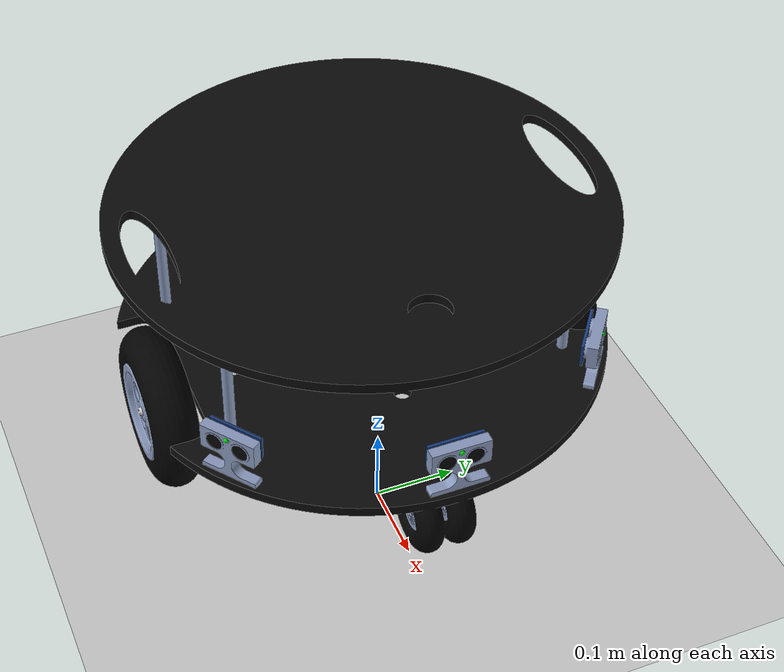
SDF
<?xml version="1.0" ?>
<sdf version="1.8">
  <world name="simple">

    <plugin
      filename="libignition-gazebo-physics-system.so"
      name="ignition::gazebo::systems::Physics">
    </plugin>
    <plugin
      filename="libignition-gazebo-sensors-system.so"
      name="ignition::gazebo::systems::Sensors">
      <render_engine>ogre2</render_engine>
    </plugin>
    <plugin
      filename="libignition-gazebo-scene-broadcaster-system.so"
      name="ignition::gazebo::systems::SceneBroadcaster">
    </plugin>

    <light name="sun" type="directional">
      <cast_shadows>true</cast_shadows>
      <pose>0 0 10 0 0 0</pose>
      <diffuse>0.8 0.8 0.8 1</diffuse>
      <specular>0.2 0.2 0.2 1</specular>
      <attenuation>
        <range>1000</range>
        <constant>0.9</constant>
        <linear>0.01</linear>
        <quadratic>0.001</quadratic>
      </attenuation>
      <direction>-0.5 0.1 -0.9</direction>
    </light>

    <model name="ground_plane">
      <static>true</static>
      <link name="link">
        <collision name="collision">
          <geometry>
            <plane>
              <normal>0 0 1</normal>
              <size>100 100</size>
            </plane>
          </geometry>
        </collision>
        <visual name="visual">
          <geometry>
            <plane>
              <normal>0 0 1</normal>
              <size>100 100</size>
            </plane>
          </geometry>
          <material>
            <ambient>0.8 0.8 0.8 1</ambient>
            <diffuse>0.8 0.8 0.8 1</diffuse>
            <specular>0.8 0.8 0.8 1</specular>
          </material>
        </visual>
      </link>
    </model>

    <model name="arlo_xolobot">
      <self_collide>false</self_collide>
      <pose>0 0 0.1 0 0 0</pose>
      <include merge="true">
        <uri>package://xolobot_description/models/arlodrive</uri>
      </include>

    </model>

  </world>
</sdf>

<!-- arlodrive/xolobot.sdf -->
<sdf version='1.6'>
  <model name='arlo_xolobot'>

    <!--   DIEGO The base of the arlo robot base: lower and upper decks, and caster wheels (fixed)   -->
    <link name='link_base'>
      <inertial>
        <mass>10</mass>
        <inertia>
          <ixx>0.191043</ixx>
          <ixy>0</ixy>
          <ixz>0</ixz>
          <iyy>0.191043</iyy>
          <iyz>0</iyz>
          <izz>0.331905</izz>
        </inertia>
        <pose frame=''>0 0 0 0 0 0</pose>
      </inertial>
      <pose frame=''>-0.055242 0 0.153337 0 0 0</pose>
      <gravity>1</gravity>
      <self_collide>0</self_collide>
      <kinematic>0</kinematic>
      <enable_wind>0</enable_wind>
      <visual name='visual'>
        <pose frame=''>0 0 0 0 -0 0</pose>
        <geometry>
          <mesh>
            <uri>model://meshes/arlo_base_altura_ok.dae</uri>
            <scale>1 1 1</scale>
          </mesh>
        </geometry>
        <transparency>0</transparency>
        <cast_shadows>1</cast_shadows>
      </visual>
      <collision name='collision_base'>
        <laser_retro>0</laser_retro>
        <max_contacts>10</max_contacts>
        <pose frame=''>0 0 0.070880 0 -0 0</pose>
        <geometry>
          <cylinder>
            <radius>0.288056</radius>
            <length>0.194</length>
          </cylinder>
        </geometry>
        <surface>
          <friction>
            <ode>
              <mu>1</mu>
              <mu2>1</mu2>
              <fdir1>0 0 0</fdir1>
              <slip1>0</slip1>
              <slip2>0</slip2>
            </ode>
            <torsional>
              <coefficient>1</coefficient>
              <patch_radius>0</patch_radius>
              <surface_radius>0</surface_radius>
              <use_patch_radius>1</use_patch_radius>
              <ode>
                <slip>0</slip>
              </ode>
            </torsional>
          </friction>
          <bounce>
            <restitution_coefficient>0</restitution_coefficient>
            <threshold>1e+06</threshold>
          </bounce>
          <contact>
            <collide_without_contact>0</collide_without_contact>
            <collide_without_contact_bitmask>1</collide_without_contact_bitmask>
            <collide_bitmask>1</collide_bitmask>
            <ode>
              <soft_cfm>0</soft_cfm>
              <soft_erp>0.2</soft_erp>
              <kp>1e+13</kp>
              <kd>1</kd>
              <max_vel>0.01</max_vel>
              <min_depth>0</min_depth>
            </ode>
            <bullet>
              <split_impulse>1</split_impulse>
              <split_impulse_penetration_threshold>-0.01</split_impulse_penetration_threshold>
              <soft_cfm>0</soft_cfm>
              <soft_erp>0.2</soft_erp>
              <kp>1e+13</kp>
              <kd>1</kd>
            </bullet>
          </contact>
        </surface>
      </collision>
    </link>

    <!--    The caster wheel: an invisible sphere to simulate de real caster wheel. -->
    <link name='link_caster'>
      <inertial>
        <mass>0.8</mass>
        <inertia>
          <ixx>0.00043452</ixx>
          <ixy>0</ixy>
          <ixz>0</ixz>
          <iyy>0.00043452</iyy>
          <iyz>0</iyz>
          <izz>0.00043452</izz>
        </inertia>
        <pose frame=''>0 0 0 0 -0 0</pose>
      </inertial>
      <pose frame=''>0.167839 0 0.05 0 -0 0</pose>
      <gravity>1</gravity>
      <self_collide>0</self_collide>
      <kinematic>0</kinematic>
      <enable_wind>0</enable_wind>
      <visual name='visual'>
        <pose frame=''>0 0 0 0 0 0</pose>
        <geometry>
          <sphere>
            <radius>0.0466108</radius>
          </sphere>
        </geometry>
        <!--        This makes the sphere invisible -->
        <transparency>1</transparency>
        <cast_shadows>1</cast_shadows>
      </visual>
      <collision name='collision'>
        <laser_retro>0</laser_retro>
        <max_contacts>10</max_contacts>
        <pose frame=''>0 0 0 0 -0 0</pose>
        <geometry>
          <sphere>
            <radius>0.046611</radius>
          </sphere>
        </geometry>
        <surface>
          <friction>
            <ode>
              <mu>1</mu>
              <mu2>1</mu2>
              <fdir1>0 0 0</fdir1>
              <slip1>0</slip1>
              <slip2>0</slip2>
            </ode>
            <torsional>
              <coefficient>1</coefficient>
              <patch_radius>0</patch_radius>
              <surface_radius>0</surface_radius>
              <use_patch_radius>1</use_patch_radius>
              <ode>
                <slip>0</slip>
              </ode>
            </torsional>
          </friction>
          <bounce>
            <restitution_coefficient>0</restitution_coefficient>
            <threshold>1e+06</threshold>
          </bounce>
          <contact>
            <collide_without_contact>0</collide_without_contact>
            <collide_without_contact_bitmask>1</collide_without_contact_bitmask>
            <collide_bitmask>1</collide_bitmask>
            <ode>
              <soft_cfm>0</soft_cfm>
              <soft_erp>0.2</soft_erp>
              <kp>1e+13</kp>
              <kd>1</kd>
              <max_vel>0.01</max_vel>
              <min_depth>0</min_depth>
            </ode>
            <bullet>
              <split_impulse>1</split_impulse>
              <split_impulse_penetration_threshold>-0.01</split_impulse_penetration_threshold>
              <soft_cfm>0</soft_cfm>
              <soft_erp>0.2</soft_erp>
              <kp>1e+13</kp>
              <kd>1</kd>
            </bullet>
          </contact>
        </surface>
      </collision>
    </link>

    <!--    The back caster wheel: an invisible sphere to simulate de real caster wheel. -->
    <link name='link_caster_back'>
      <inertial>
        <mass>0.8</mass>
        <inertia>
          <ixx>0.00043452</ixx>
          <ixy>0</ixy>
          <ixz>0</ixz>
          <iyy>0.00043452</iyy>
          <iyz>0</iyz>
          <izz>0.00043452</izz>
        </inertia>
        <pose frame=''>0 0 0 0 -0 0</pose>
      </inertial>
      <pose frame=''>-0.278 0 0.05 0 -0 0</pose>
      <gravity>1</gravity>
      <self_collide>0</self_collide>
      <kinematic>0</kinematic>
      <enable_wind>0</enable_wind>
      <visual name='visual'>
        <pose frame=''>0 0 0 0 0 0</pose>
        <geometry>
          <sphere>
            <radius>0.0466108</radius>
          </sphere>
        </geometry>
        <!--        This makes the sphere invisible -->
        <transparency>1</transparency>
        <cast_shadows>1</cast_shadows>
      </visual>
      <collision name='collision'>
        <laser_retro>0</laser_retro>
        <max_contacts>10</max_contacts>
        <pose frame=''>0 0 0 0 -0 0</pose>
        <geometry>
          <sphere>
            <radius>0.046611</radius>
          </sphere>
        </geometry>
        <surface>
          <friction>
            <ode>
              <mu>1</mu>
              <mu2>1</mu2>
              <fdir1>0 0 0</fdir1>
              <slip1>0</slip1>
              <slip2>0</slip2>
            </ode>
            <torsional>
              <coefficient>1</coefficient>
              <patch_radius>0</patch_radius>
              <surface_radius>0</surface_radius>
              <use_patch_radius>1</use_patch_radius>
              <ode>
                <slip>0</slip>
              </ode>
            </torsional>
          </friction>
          <bounce>
            <restitution_coefficient>0</restitution_coefficient>
            <threshold>1e+06</threshold>
          </bounce>
          <contact>
            <collide_without_contact>0</collide_without_contact>
            <collide_without_contact_bitmask>1</collide_without_contact_bitmask>
            <collide_bitmask>1</collide_bitmask>
            <ode>
              <soft_cfm>0</soft_cfm>
              <soft_erp>0.2</soft_erp>
              <kp>1e+13</kp>
              <kd>1</kd>
              <max_vel>0.01</max_vel>
              <min_depth>0</min_depth>
            </ode>
            <bullet>
              <split_impulse>1</split_impulse>
              <split_impulse_penetration_threshold>-0.01</split_impulse_penetration_threshold>
              <soft_cfm>0</soft_cfm>
              <soft_erp>0.2</soft_erp>
              <kp>1e+13</kp>
              <kd>1</kd>
            </bullet>
          </contact>
        </surface>
      </collision>
    </link>

    <!--    The left wheel of the base-->
    <link name='link_wheel_left'>
      <inertial>
        <mass>1</mass>
        <inertia>
          <ixx>0.166667</ixx>
          <ixy>0</ixy>
          <ixz>0</ixz>
          <iyy>0.166667</iyy>
          <iyz>0</iyz>
          <izz>0.166667</izz>
        </inertia>
        <pose frame=''>0 0 0 0 -0 0</pose>
      </inertial>
      <pose frame=''>-0.053 0.251767 0.0978 0 -0 0</pose>
      <gravity>1</gravity>
      <self_collide>0</self_collide>
      <kinematic>0</kinematic>
      <enable_wind>0</enable_wind>
      <visual name='visual'>
        <pose frame=''>0 0 0 0 -0 0</pose>
        <geometry>
          <mesh>
            <uri>model://meshes/arlo_wheel_mejorado.dae</uri>
            <scale>1 1 1</scale>
          </mesh>
        </geometry>
        <transparency>0</transparency>
        <cast_shadows>1</cast_shadows>
      </visual>
      <collision name='collision'>
        <laser_retro>0</laser_retro>
        <max_contacts>10</max_contacts>
        <pose frame=''>0 0 0 0 -0 0</pose>
        <geometry>
          <mesh>
            <uri>model://meshes/arlo_wheel_mejorado.dae</uri>
            <scale>1 1 1</scale>
          </mesh>
        </geometry>
        <surface>
          <friction>
            <ode>
              <mu>1</mu>
              <mu2>1</mu2>
              <fdir1>0 0 0</fdir1>
              <slip1>0</slip1>
              <slip2>0</slip2>
            </ode>
            <torsional>
              <coefficient>1</coefficient>
              <patch_radius>0</patch_radius>
              <surface_radius>0</surface_radius>
              <use_patch_radius>1</use_patch_radius>
              <ode>
                <slip>0</slip>
              </ode>
            </torsional>
          </friction>
          <bounce>
            <restitution_coefficient>0</restitution_coefficient>
            <threshold>1e+06</threshold>
          </bounce>
          <contact>
            <collide_without_contact>0</collide_without_contact>
            <collide_without_contact_bitmask>1</collide_without_contact_bitmask>
            <collide_bitmask>1</collide_bitmask>
            <ode>
              <soft_cfm>0</soft_cfm>
              <soft_erp>0.2</soft_erp>
              <kp>1e+13</kp>
              <kd>1</kd>
              <max_vel>0.01</max_vel>
              <min_depth>0</min_depth>
            </ode>
            <bullet>
              <split_impulse>1</split_impulse>
              <split_impulse_penetration_threshold>-0.01</split_impulse_penetration_threshold>
              <soft_cfm>0</soft_cfm>
              <soft_erp>0.2</soft_erp>
              <kp>1e+13</kp>
              <kd>1</kd>
            </bullet>
          </contact>
        </surface>
      </collision>
    </link>

    <!--    The right wheel of the base -->
    <link name='link_wheel_right'>
      <inertial>
        <mass>1</mass>
        <inertia>
          <ixx>0.166667</ixx>
          <ixy>0</ixy>
          <ixz>0</ixz>
          <iyy>0.166667</iyy>
          <iyz>0</iyz>
          <izz>0.166667</izz>
        </inertia>
        <pose frame=''>0 0 0 0 -0 0</pose>
      </inertial>
      <pose frame=''>-0.053 -0.251767 0.0978 0 0 -3.13728</pose>
      <gravity>1</gravity>
      <self_collide>0</self_collide>
      <kinematic>0</kinematic>
      <enable_wind>0</enable_wind>
      <visual name='visual'>
        <pose frame=''>0 0 0 0 -0 0</pose>
        <geometry>
          <mesh>
            <uri>model://meshes/arlo_wheel_mejorado.dae</uri>
            <scale>1 1 1</scale>
          </mesh>
        </geometry>
        <transparency>0</transparency>
        <cast_shadows>1</cast_shadows>
        <material>
          <shader type='pixel' />
          <emissive>0 0 0 1</emissive>
        </material>
      </visual>
      <collision name='collision'>
        <laser_retro>0</laser_retro>
        <max_contacts>10</max_contacts>
        <pose frame=''>0 0 0 0 -0 0</pose>
        <geometry>
          <mesh>
            <uri>model://meshes/arlo_wheel_mejorado.dae</uri>
            <scale>1 1 1</scale>
          </mesh>
        </geometry>
        <surface>
          <friction>
            <ode>
              <mu>1</mu>
              <mu2>1</mu2>
              <fdir1>0 0 0</fdir1>
              <slip1>0</slip1>
              <slip2>0</slip2>
            </ode>
            <torsional>
              <coefficient>1</coefficient>
              <patch_radius>0</patch_radius>
              <surface_radius>0</surface_radius>
              <use_patch_radius>1</use_patch_radius>
              <ode>
                <slip>0</slip>
              </ode>
            </torsional>
          </friction>
          <bounce>
            <restitution_coefficient>0</restitution_coefficient>
            <threshold>1e+06</threshold>
          </bounce>
          <contact>
            <collide_without_contact>0</collide_without_contact>
            <collide_without_contact_bitmask>1</collide_without_contact_bitmask>
            <collide_bitmask>1</collide_bitmask>
            <ode>
              <soft_cfm>0</soft_cfm>
              <soft_erp>0.2</soft_erp>
              <kp>1e+13</kp>
              <kd>1</kd>
              <max_vel>0.01</max_vel>
              <min_depth>0</min_depth>
            </ode>
            <bullet>
              <split_impulse>1</split_impulse>
              <split_impulse_penetration_threshold>-0.01</split_impulse_penetration_threshold>
              <soft_cfm>0</soft_cfm>
              <soft_erp>0.2</soft_erp>
              <kp>1e+13</kp>
              <kd>1</kd>
            </bullet>
          </contact>
        </surface>
      </collision>
    </link>

    <!--    The three PING))) ultrasonic distance sensors (these are fixed with with a JOINT. -->
    <link name='link_sensor_center'>
      <gravity>0</gravity>
      <inertial>
        <mass>0.01</mass>
      </inertial>
      <pose frame=''>0.218715 0 0.17346 0 0 0</pose>
      <sensor name='head_hokuyo_sensor' type='ray'>
        <pose frame=''>0 0 0.0125 3.14159 0 0</pose>
        <visualize>1</visualize>
        <update_rate>30</update_rate>
        <ray>
          <noise>
            <type>gaussian</type>
            <mean>0</mean>
            <stddev>0.001</stddev>
          </noise>
          <scan>
            <horizontal>
              <samples>16</samples>
              <resolution>1</resolution>
              <min_angle>-0.4</min_angle>
              <max_angle>0.4</max_angle>
            </horizontal>
            <vertical>
              <samples>1</samples>
              <min_angle>0</min_angle>
              <max_angle>0</max_angle>
            </vertical>
          </scan>
          <range>
            <min>0.05</min>
            <max>3</max>
            <resolution>0.02</resolution>
          </range>
        </ray>
        <plugin name="gazebo_ros_head_hokuyo_controller" filename="libgazebo_ros_ray_sensor.so">
          <ros>
          <namespace>/arlo/laser/</namespace>
          <remapping>~/out:=scan_center</remapping>
          </ros>
          <output_type>sensor_msgs/LaserScan</output_type>
        </plugin>
      </sensor>
      <visual name='visual'>
        <pose frame=''>0 0 0 0 -0 0</pose>
        <geometry>
          <mesh>
            <uri>model://meshes/arlo_sensor.dae</uri>
            <scale>1 1 1</scale>
          </mesh>
        </geometry>
      </visual>
      <collision name='collision'>
        <pose frame=''>0 0 0 0 0 0</pose>
        <geometry>
          <mesh>
            <uri>model://meshes/arlo_sensor.dae</uri>
            <scale>1 1 1</scale>
          </mesh>
        </geometry>
      </collision>
    </link>

    <link name='link_sensor_back'>
      <gravity>0</gravity>
      <inertial>
        <mass>0.01</mass>
      </inertial>
      <pose frame=''>-0.325 0 0.17346 0 0 3.14159</pose>
      <sensor name='head_hokuyo_sensor' type='ray'>
        <pose frame=''>0 0 0.0125 3.14159 0 0</pose>
        <visualize>0</visualize>
        <update_rate>30</update_rate>
        <ray>
          <noise>
            <type>gaussian</type>
            <mean>0</mean>
            <stddev>0.001</stddev>
          </noise>
          <scan>
            <horizontal>
              <samples>16</samples>
              <resolution>1</resolution>
              <min_angle>-0.4</min_angle>
              <max_angle>0.4</max_angle>
            </horizontal>
            <vertical>
              <samples>1</samples>
              <min_angle>0</min_angle>
              <max_angle>0</max_angle>
            </vertical>
          </scan>
          <range>
            <min>0.05</min>
            <max>3</max>
            <resolution>0.02</resolution>
          </range>
        </ray>
        <plugin name="gazebo_ros_head_hokuyo_controller" filename="libgazebo_ros_ray_sensor.so">
          <ros>
          <namespace>/arlo/laser/</namespace>
          <remapping>~/out:=scan_back</remapping>
          </ros>
          <output_type>sensor_msgs/LaserScan</output_type>
        </plugin>
      </sensor>
      <visual name='visual'>
        <pose frame=''>0 0 0 0 -0 0</pose>
        <geometry>
          <mesh>
            <uri>model://meshes/arlo_sensor.dae</uri>
            <scale>1 1 1</scale>
          </mesh>
        </geometry>
      </visual>
      <collision name='collision'>
        <pose frame=''>0 0 0 0 0 0</pose>
        <geometry>
          <mesh>
            <uri>model://meshes/arlo_sensor.dae</uri>
            <scale>1 1 1</scale>
          </mesh>
        </geometry>
      </collision>
    </link>

    <link name='link_sensor_right'>
      <gravity>0</gravity>
      <inertial>
        <mass>0.01</mass>
      </inertial>
      <pose frame=''>0.113899 -0.214883 0.17346 0 0 -0.927292</pose>
      <sensor name='head_hokuyo_sensor' type='ray'>
        <pose frame=''>0 0 0.0125 3.14159 0 0</pose>
        <visualize>1</visualize>
        <update_rate>30</update_rate>
        <ray>
          <noise>
            <type>gaussian</type>
            <mean>0</mean>
            <stddev>0.001</stddev>
          </noise>
          <scan>
            <horizontal>
              <samples>16</samples>
              <resolution>1</resolution>
              <min_angle>-0.4</min_angle>
              <max_angle>0.4</max_angle>
            </horizontal>
            <vertical>
              <samples>1</samples>
              <min_angle>0</min_angle>
              <max_angle>0</max_angle>
            </vertical>
          </scan>
          <range>
            <min>0.05</min>
            <max>3</max>
            <resolution>0.02</resolution>
          </range>
        </ray>
        <plugin name="gazebo_ros_head_hokuyo_controller" filename="libgazebo_ros_ray_sensor.so">
          <ros>
          <namespace>/arlo/laser/</namespace>
          <remapping>~/out:=scan_right</remapping>
          </ros>
          <output_type>sensor_msgs/LaserScan</output_type>
        </plugin>
      </sensor>
      <visual name='visual'>
        <pose frame=''>0 0 0 0 0 0</pose>
        <geometry>
          <mesh>
            <uri>model://meshes/arlo_sensor.dae</uri>
            <scale>1 1 1</scale>
          </mesh>
        </geometry>
      </visual>
      <collision name='collision'>
        <pose frame=''>0 0 0 0 0 0</pose>
        <geometry>
          <mesh>
            <uri>model://meshes/arlo_sensor.dae</uri>
            <scale>1 1 1</scale>
          </mesh>
        </geometry>
      </collision>
    </link>

    <link name='link_sensor_left'>
      <gravity>0</gravity>
      <inertial>
        <mass>0.01</mass>
      </inertial>
      <pose frame=''>0.113899 0.214883 0.17346 0 0 0.927292</pose>
      <sensor name='head_hokuyo_sensor' type='ray'>
        <pose frame=''>0 0 0.0125 3.14159 0 0</pose>
        <visualize>1</visualize>
        <update_rate>30</update_rate>
        <ray>
          <noise>
            <type>gaussian</type>
            <mean>0</mean>
            <stddev>0.001</stddev>
          </noise>
          <scan>
            <horizontal>
              <samples>16</samples>
              <resolution>1</resolution>
              <min_angle>-0.4</min_angle>
              <max_angle>0.4</max_angle>
            </horizontal>
            <vertical>
              <samples>1</samples>
              <min_angle>0</min_angle>
              <max_angle>0</max_angle>
            </vertical>
          </scan>
          <range>
            <min>0.05</min>
            <max>3</max>
            <resolution>0.02</resolution>
          </range>
        </ray>
        <plugin name="gazebo_ros_head_hokuyo_controller" filename="libgazebo_ros_ray_sensor.so">
          <ros>
          <namespace>/arlo/laser/</namespace>
          <remapping>~/out:=scan_left</remapping>
          </ros>
          <output_type>sensor_msgs/LaserScan</output_type>
        </plugin>
      </sensor>
      <visual name='visual'>
        <pose frame=''>0 0 0 0 -0 0</pose>
        <geometry>
          <mesh>
            <uri>model://meshes/arlo_sensor.dae</uri>
            <scale>1 1 1</scale>
          </mesh>
        </geometry>
      </visual>
      <collision name='collision'>
        <pose frame=''>0 0 0 0 -0 0</pose>
        <geometry>
          <mesh>
            <uri>model://meshes/arlo_sensor.dae</uri>
            <scale>1 1 1</scale>
          </mesh>
        </geometry>
      </collision>
    </link>

    <!--Joints for keeping fixed the three sonar sensors.    -->
    <joint name='link_base_JOINT_sensor_center' type='fixed'>
      <parent>link_base</parent>
      <child>link_sensor_center</child>
      <pose frame=''>0 0 0 0 -0 0</pose>
      <physics>
        <ode>
          <limit>
            <cfm>0</cfm>
            <erp>0.2</erp>
          </limit>
          <suspension>
            <cfm>0</cfm>
            <erp>0.2</erp>
          </suspension>
        </ode>
      </physics>
    </joint>
    <joint name='link_base_JOINT_sensor_back' type='fixed'>
      <parent>link_base</parent>
      <child>link_sensor_back</child>
      <pose frame=''>0 0 0 0 -0 0</pose>
      <physics>
        <ode>
          <limit>
            <cfm>0</cfm>
            <erp>0.2</erp>
          </limit>
          <suspension>
            <cfm>0</cfm>
            <erp>0.2</erp>
          </suspension>
        </ode>
      </physics>
    </joint>
    <joint name='link_base_JOINT_sensor_right' type='fixed'>
      <parent>link_base</parent>
      <child>link_sensor_right</child>
      <pose frame=''>0 0 0 0 -0 0</pose>
      <physics>
        <ode>
          <limit>
            <cfm>0</cfm>
            <erp>0.2</erp>
          </limit>
          <suspension>
            <cfm>0</cfm>
            <erp>0.2</erp>
          </suspension>
        </ode>
      </physics>
    </joint>
    <joint name='link_base_JOINT_sensor_left' type='fixed'>
      <parent>link_base</parent>
      <child>link_sensor_left</child>
      <pose frame=''>0 0 0 0 -0 0</pose>
      <physics>
        <ode>
          <limit>
            <cfm>0</cfm>
            <erp>0.2</erp>
          </limit>
          <suspension>
            <cfm>0</cfm>
            <erp>0.2</erp>
          </suspension>
        </ode>
      </physics>
    </joint>
    <joint name='link_base_JOINT_caster' type='ball'>
      <parent>link_base</parent>
      <child>link_caster</child>
      <pose frame=''>0 0 0 0 -0 0</pose>
      <physics>
        <ode>
          <limit>
            <cfm>0</cfm>
            <erp>0.2</erp>
          </limit>
          <suspension>
            <cfm>0</cfm>
            <erp>0.2</erp>
          </suspension>
        </ode>
      </physics>
    </joint>
    <joint name='link_base_JOINT_caster_back' type='ball'>
      <parent>link_base</parent>
      <child>link_caster_back</child>
      <pose frame=''>0 0 0 0 -0 0</pose>
      <physics>
        <ode>
          <limit>
            <cfm>0</cfm>
            <erp>0.2</erp>
          </limit>
          <suspension>
            <cfm>0</cfm>
            <erp>0.2</erp>
          </suspension>
        </ode>
      </physics>
    </joint>
    <joint name='link_base_JOINT_wheel_left' type='revolute'>
      <parent>link_base</parent>
      <child>link_wheel_left</child>
      <pose frame=''>0 0 0 0 -0 0</pose>
      <axis>
        <xyz>0 1 0</xyz>
        <use_parent_model_frame>0</use_parent_model_frame>
        <limit>
          <lower>-1.79769e+308</lower>
          <upper>1.79769e+308</upper>
          <effort>-1</effort>
          <velocity>-1</velocity>
        </limit>
        <dynamics>
          <spring_reference>0</spring_reference>
          <spring_stiffness>0</spring_stiffness>
          <damping>0</damping>
          <friction>0</friction>
        </dynamics>
      </axis>
      <physics>
        <ode>
          <limit>
            <cfm>0</cfm>
            <erp>0.2</erp>
          </limit>
          <suspension>
            <cfm>0</cfm>
            <erp>0.2</erp>
          </suspension>
        </ode>
      </physics>
    </joint>
    <joint name='link_base_JOINT_wheel_right' type='revolute'>
      <parent>link_base</parent>
      <child>link_wheel_right</child>
      <pose frame=''>0 0 0 0 -0 0</pose>
      <axis>
        <xyz>0 -1 0</xyz>
        <use_parent_model_frame>0</use_parent_model_frame>
        <limit>
          <lower>-1.79769e+308</lower>
          <upper>1.79769e+308</upper>
          <effort>-1</effort>
          <velocity>-1</velocity>
        </limit>
        <dynamics>
          <spring_reference>0</spring_reference>
          <spring_stiffness>0</spring_stiffness>
          <damping>0</damping>
          <friction>0</friction>
        </dynamics>
      </axis>
      <physics>
        <ode>
          <limit>
            <cfm>0</cfm>
            <erp>0.2</erp>
          </limit>
          <suspension>
            <cfm>0</cfm>
            <erp>0.2</erp>
          </suspension>
        </ode>
      </physics>
    </joint>
    <static>0</static>
    <allow_auto_disable>1</allow_auto_disable>

      <plugin
        filename="libignition-gazebo-diff-drive-system.so"
        name="ignition::gazebo::systems::DiffDrive">
        <left_joint>link_base_JOINT_wheel_left</left_joint>
        <right_joint>link_base_JOINT_wheel_right</right_joint>
        <wheel_separation>0.5</wheel_separation>
        <wheel_radius>0.048</wheel_radius>
        <odom_publish_frequency>1</odom_publish_frequency>
      </plugin>

  </model>
</sdf>
